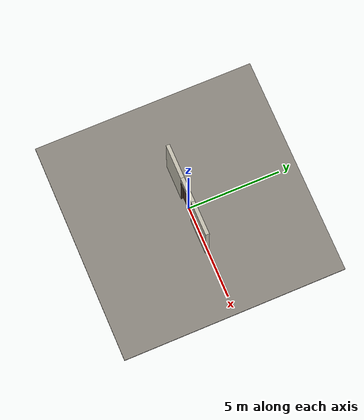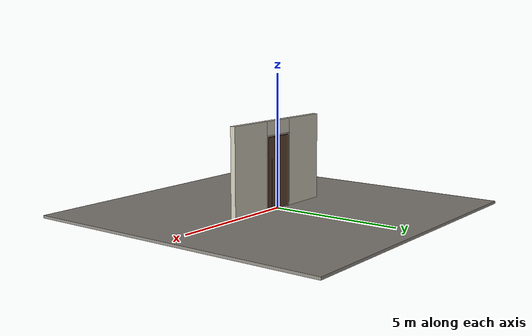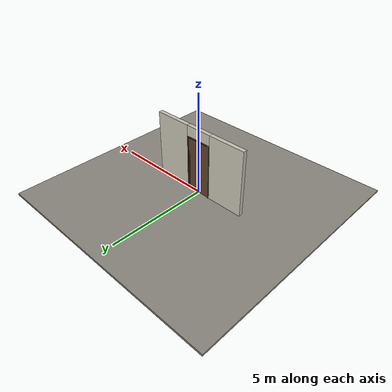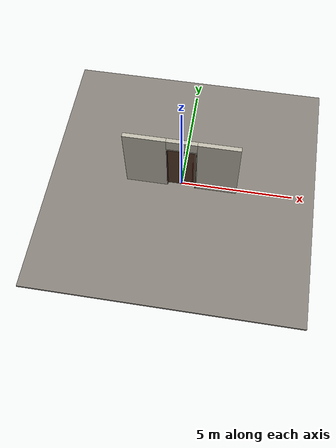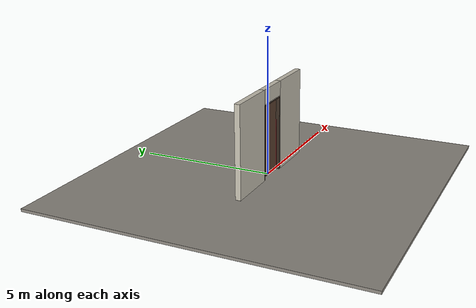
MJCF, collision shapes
<?xml version="1.0" ?>
<mujoco model="db0560_pivot_simple">
  <compiler angle="radian" meshdir="../../hardware" texturedir="../../textures" autolimits="true" inertiafromgeom="false"/>
  <option timestep="0.002" integrator="implicitfast" cone="elliptic" impratio="10" noslip_iterations="3">
    <flag multiccd="enable"/>
  </option>
  <size memory="16M"/>
  <default>
    <geom condim="4" solref="0.005 1" solimp="0.95 0.99 0.001"/>
    <joint solreflimit="0.005 1" solimplimit="0.95 0.99 0.001"/>
    <tendon solreflimit="0.005 1"/>
    <equality solref="0.002 1"/>
  </default>
  <visual>
    <headlight ambient="0.4 0.4 0.4" diffuse="0.7 0.7 0.7" specular="0.2 0.2 0.2"/>
    <quality shadowsize="4096"/>
    <map znear="0.01" zfar="60"/>
  </visual>
  <asset>
    <mesh name="pull_897e207f65" file="pull_897e207f65.obj"/>
    <material name="mat_floor" rgba="0.55 0.53 0.5 1" specular="0.2" shininess="0.15" reflectance="0"/>
    <material name="mat_wall" rgba="0.78 0.76 0.7 1" specular="0.2" shininess="0.1" reflectance="0"/>
    <material name="mat_leaf" rgba="0.36 0.25 0.18 1" specular="0.2" shininess="0.55" reflectance="0"/>
    <material name="mat_leaf_brace" rgba="0.324 0.225 0.162 1" specular="0.2" shininess="0.2" reflectance="0"/>
    <material name="mat_hinge" rgba="0.65 0.66 0.68 1" specular="0.74" shininess="0.5" reflectance="0.36"/>
    <material name="mat_op_stainless" rgba="0.75 0.76 0.77 1" specular="0.8" shininess="0.65" reflectance="0.4"/>
    <material name="mat_frame" rgba="0.22 0.17 0.13 1" specular="0.8" shininess="0.6" reflectance="0.4"/>
    <texture name="skybox" type="skybox" builtin="gradient" rgb1="0.6 0.7 0.85" rgb2="0.9 0.92 0.95" width="256" height="256"/>
  </asset>
  <worldbody>
    <light name="sun" pos="1.5 -2.5 4" dir="-0.3 0.5 -0.8" directional="true" diffuse="0.8 0.8 0.8" specular="0.3 0.3 0.3" castshadow="true"/>
    <light name="fill" pos="-1.5 2.5 3" dir="0.3 -0.5 -0.7" directional="true" diffuse="0.35 0.35 0.4" castshadow="false"/>
    <camera name="robot_view" pos="0 -3.2305 2.2429" xyaxes="1 0 0 0 0.26963 0.962964" fovy="52"/>
    <camera name="far_view" pos="0 3.1045 2.2429" xyaxes="-1 0 0 0 -0.26963 0.962964" fovy="52"/>
    <camera name="iso" pos="2.4073 -2.7237 2.7497" xyaxes="0.741536 0.670913 0 -0.242917 0.268487 0.932151" fovy="46"/>
    <camera name="detail_handle" pos="0.672 -0.895 1.33" xyaxes="0.97561 0.219512 0 -0.070934 0.315262 0.94635" fovy="38"/>
    <geom name="floor" type="box" size="6 6 0.05" pos="0 0 -0.05" material="mat_floor" group="0" contype="1" conaffinity="1" friction="0.8 0.005 0.0001" density="2400"/>
    <geom name="wall_left" type="box" size="0.9245 0.1 1.656" pos="-1.5755 -0.063 1.656" material="mat_wall" group="0" contype="1" conaffinity="1" friction="0.6 0.005 0.0001" density="800"/>
    <geom name="wall_right" type="box" size="0.9095 0.1 1.656" pos="1.5905 -0.063 1.656" material="mat_wall" group="0" contype="1" conaffinity="1" friction="0.6 0.005 0.0001" density="800"/>
    <geom name="wall_header" type="box" size="0.666 0.1 0.2625" pos="0.015 -0.063 3.0495" material="mat_wall" group="0" contype="1" conaffinity="1" friction="0.6 0.005 0.0001" density="800"/>
    <geom name="pivot_bottom_socket" type="box" size="0.035 0.035 0.008" pos="-0.587 0.04 -0.002" material="mat_hinge" group="1" contype="0" conaffinity="0" density="7850"/>
    <geom name="pivot_top_bracket" type="box" size="0.035 0.035 0.0355" pos="-0.587 0.04 2.7515" material="mat_hinge" group="1" contype="0" conaffinity="0" density="7850"/>
    <geom name="jamb_hinge" type="box" size="0.0225 0.1 1.356" pos="-0.6285 -0.063 1.356" material="mat_frame" group="0" contype="1" conaffinity="1" friction="0.6 0.005 0.0001" density="300"/>
    <geom name="jamb_strike" type="box" size="0.0225 0.1 1.356" pos="0.6285 -0.063 1.356" material="mat_frame" group="0" contype="1" conaffinity="1" friction="0.6 0.005 0.0001" density="300"/>
    <geom name="stud_strike" type="box" size="0.015 0.1 1.356" pos="0.666 -0.063 1.356" material="mat_wall" group="0" contype="1" conaffinity="1" friction="0.6 0.005 0.0001" density="500"/>
    <geom name="jamb_head" type="box" size="0.666 0.1 0.0225" pos="0.015 -0.063 2.7345" material="mat_frame" group="0" contype="1" conaffinity="1" friction="0.6 0.005 0.0001" density="300"/>
    <geom name="head_stud" type="box" size="0.666 0.1 0.015" pos="0.015 -0.063 2.772" material="mat_wall" group="0" contype="1" conaffinity="1" friction="0.6 0.005 0.0001" density="500"/>
    <site name="approach_point" pos="0 -1.5 0" quat="1 0 0 0" size="0.05" rgba="0.2 0.9 0.2 0.5" group="4"/>
    <site name="goal_point" pos="0 1.5 0" quat="1 0 0 0" size="0.05" rgba="0.2 0.9 0.2 0.5" group="4"/>
    <site name="door_plane_center" pos="0 0 1.356" quat="1 0 0 0" size="0.02" rgba="0.2 0.9 0.2 0.5" group="4"/>
    <body name="leaf" pos="-0.606 0 0">
      <inertial pos="0.672658 0 1.314657" mass="125.784" quat="-0.489402 0.489402 0.510378 0.510378" diaginertia="16.785194375 72.12090272 88.537252604"/>
      <joint name="leaf_hinge" type="hinge" axis="0 0 1" pos="0.019 0.04 0" limited="true" range="0 1.570796" solreflimit="0.02 1" damping="1.061129" frictionloss="2.257578" armature="0.02"/>
      <geom name="leaf_slab" type="box" size="0.6 0.03 1.35" pos="0.603 0 1.358" material="mat_leaf" group="0" contype="1" conaffinity="1" friction="0.35 0.005 0.0001" density="1"/>
      <geom name="leaf_pull_n" type="mesh" mesh="pull_897e207f65" pos="1.098 -0.03 1.05" quat="0.707107 0.707107 0 0" material="mat_op_stainless" group="1" contype="0" conaffinity="0" density="3000"/>
      <geom name="leaf_pull_col_n" type="capsule" size="0.016 0.88" pos="1.098 -0.095 1.05" material="mat_op_stainless" group="3" contype="1" conaffinity="1" rgba="0.8 0.3 0.3 0.25" friction="0.7 0.01 0.0001" density="3000"/>
      <geom name="leaf_pull_p" type="mesh" mesh="pull_897e207f65" pos="1.098 0.03 1.05" quat="-0.707107 0.707107 0 0" material="mat_op_stainless" group="1" contype="0" conaffinity="0" density="3000"/>
      <geom name="leaf_pull_col_p" type="capsule" size="0.016 0.88" pos="1.098 0.095 1.05" material="mat_op_stainless" group="3" contype="1" conaffinity="1" rgba="0.8 0.3 0.3 0.25" friction="0.7 0.01 0.0001" density="3000"/>
      <site name="leaf_pull_grip_n" pos="1.098 -0.095 1.05" quat="1 0 0 0" size="0.012" rgba="0.2 0.9 0.2 0.5" group="4"/>
      <site name="leaf_pull_grip_p" pos="1.098 0.095 1.05" quat="1 0 0 0" size="0.012" rgba="0.2 0.9 0.2 0.5" group="4"/>
      <site name="leaf_edge_mid" pos="1.203 0 1.35" quat="1 0 0 0" size="0.02" rgba="0.2 0.9 0.2 0.5" group="4"/>
    </body>
  </worldbody>
  <sensor>
    <jointpos name="leaf_hinge_pos" joint="leaf_hinge"/>
    <jointvel name="leaf_hinge_vel" joint="leaf_hinge"/>
  </sensor>
</mujoco>
